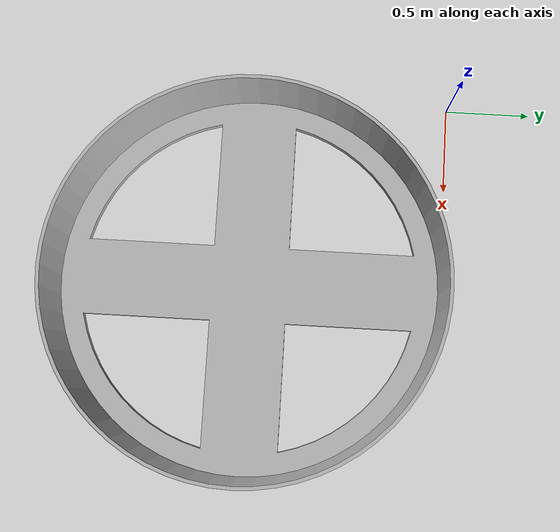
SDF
<sdf version='1.6'>
  <model name='Neleski_Cap'>
    <link name='Neleski_Cap'>
      <pose frame=''>0 0 0 0 -0 0</pose>
      <inertial>
        <pose frame=''>3e-06 4e-06 0.003969 0 -0 0</pose>
        <mass>0.07479</mass>
        <inertia>
          <ixx>5.25597e-05</ixx>
          <ixy>4.4367e-09</ixy>
          <ixz>-6.04432e-10</ixz>
          <iyy>5.25654e-05</iyy>
          <iyz>8.96219e-10</iyz>
          <izz>0.000101324</izz>
        </inertia>
      </inertial>
      <collision name='Neleski_Cap_collision'>
        <pose frame=''>0 0 0 1.5708 -0 0</pose>
        <geometry>
          <mesh>
            <scale>.0254 .0254 .0254</scale>
            <uri>model://Cap/meshes/Neleski_Cap.STL</uri>
          </mesh>
        </geometry>
      </collision>
      <visual name='Neleski_Cap_visual'>
        <pose frame=''>0 0 0 1.5708 -0 0</pose>
        <geometry>
          <mesh>
            <scale>.0254 .0254 .0254</scale>
            <uri>model://Cap/meshes/Neleski_Cap.STL</uri>
          </mesh>
        </geometry>
      </visual>
    </link>
  </model>
</sdf>
